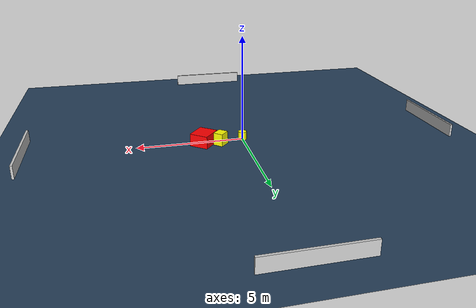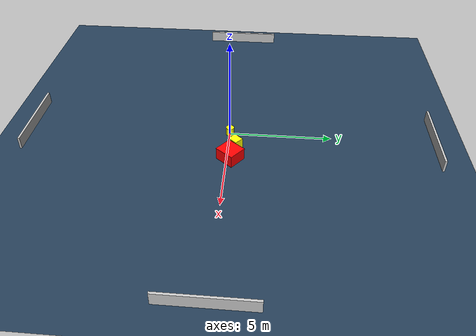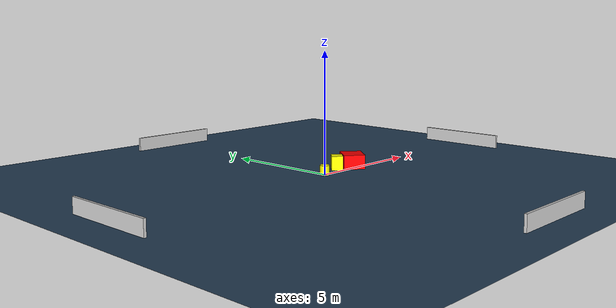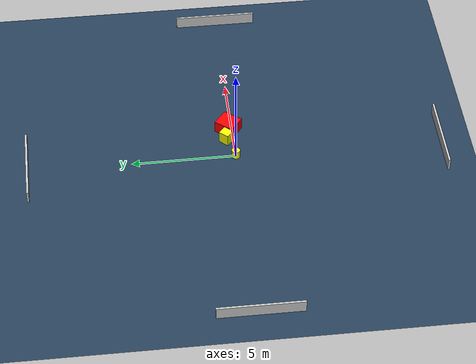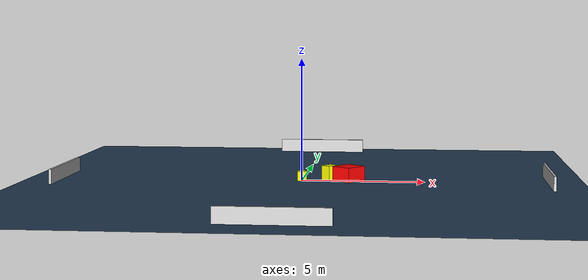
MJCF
<?xml version="1.0" ?>
<mujoco model="generated_environment">
  <option timestep="0.01" integrator="RK4" cone="elliptic"/>
  <default>
    <geom density="1"/>
  </default>
  <asset>
    <texture builtin="gradient" height="3072" name="skybox" rgb1="0.3 0.5 0.7" rgb2="0 0 0" type="skybox" width="512"/>
    <texture builtin="checker" height="300" name="groundplane" rgb1="0.2 0.3 0.4" rgb2="0.1 0.2 0.3" type="2d" width="300"/>
    <material name="groundplane" reflectance="0.2" texrepeat="5 5" texture="groundplane"/>
  </asset>
  <worldbody>
    <light dir="0 0 -1" directional="true" pos="0 0 1.5"/>
    <geom condim="3" friction="0.5 0.005 0.001" material="groundplane" name="floor" pos="0 0 0" size="0 0 0.05" type="plane"/>
    <body name="walls">
      <geom name="wall_1" condim="4" pos="-10.0 0.0 0.3" rgba="0.800000011920929 0.800000011920929 0.800000011920929 1.0" size="0.05 2.0 0.3" type="box"/>
      <geom name="wall_2" condim="4" pos="10.0 0.0 0.3" rgba="0.800000011920929 0.800000011920929 0.800000011920929 1.0" size="0.05 2.0 0.3" type="box"/>
      <geom name="wall_3" condim="4" pos="0.0 -10.0 0.3" rgba="0.800000011920929 0.800000011920929 0.800000011920929 1.0" size="2.0 0.05 0.3" type="box"/>
      <geom name="wall_4" condim="4" pos="0.0 10.0 0.3" rgba="0.800000011920929 0.800000011920929 0.800000011920929 1.0" size="2.0 0.05 0.3" type="box"/>
    </body>
    <body name="robot">
      <joint name="joint_x" type="slide" pos="0 0 0" axis="1 0 0"/>
      <joint name="joint_y" type="slide" pos="0 0 0" axis="0 1 0"/>
      <geom name="robot" type="cylinder" pos="0.0 0.0 0.2" size="0.2 0.2 0.0" mass="5.0" friction="1.0 0.005 0.0001" condim="4" rgba="1.0 1.0 0.0 1.0"/>
    </body>
    <body name="obstacle_1_movable">
      <geom name="obstacle_1_movable" condim="4" pos="1.1215533822836408 0.35058661217351755 0.3" euler="0 0 317.424288945486" friction="0.0 0.005 0.001" rgba="1.0 1.0 0.0 1.0" size="0.2328540211330061 0.25890721062046274 0.3" type="box" mass="0.1"/>
      <joint type="free"/>
    </body>
    <body name="obstacle_2_static">
      <geom name="obstacle_2_static" condim="4" pos="1.9032361403675295 0.1665891974208987 0.3" euler="0 0 141.45405583118216" friction="0.0 0.005 0.001" rgba="1.0 0.0 0.0 1.0" size="0.4480493183805654 0.4924874382829984 0.3" type="box"/>
    </body>
  </worldbody>
  <actuator>
    <motor name="actuator_x" joint="joint_x" gear="1" ctrlrange="-1 1"/>
    <motor name="actuator_y" joint="joint_y" gear="1" ctrlrange="-1 1"/>
  </actuator>
</mujoco>
